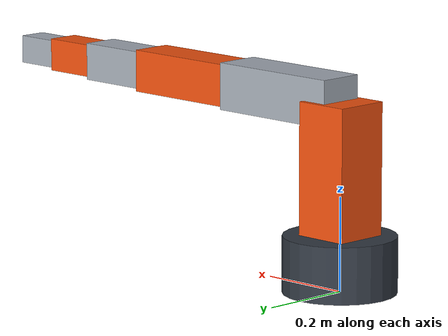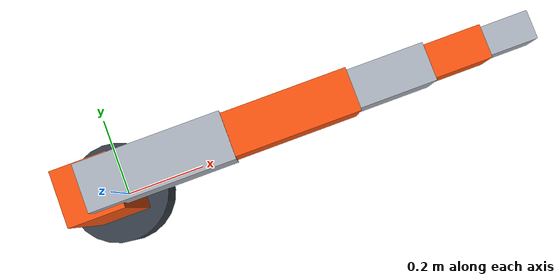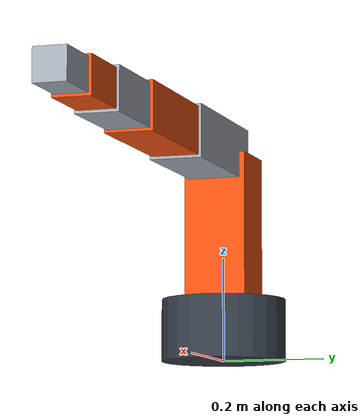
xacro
<?xml version="1.0"?>
<robot name="custom_arm" xmlns:xacro="http://www.ros.org/wiki/xacro">

  <material name="dark_gray">
    <color rgba="0.20 0.23 0.27 1.0"/>
  </material>
  <material name="orange">
    <color rgba="0.95 0.32 0.06 1.0"/>
  </material>
  <material name="light_gray">
    <color rgba="0.65 0.68 0.72 1.0"/>
  </material>

  <!-- A box whose link frame is at one end of the box. -->
  <xacro:macro name="box_link" params="name mass sx sy sz ox oy oz material">
    <link name="${name}">
      <visual>
        <origin xyz="${ox} ${oy} ${oz}" rpy="0 0 0"/>
        <geometry>
          <box size="${sx} ${sy} ${sz}"/>
        </geometry>
        <material name="${material}"/>
      </visual>

      <collision>
        <origin xyz="${ox} ${oy} ${oz}" rpy="0 0 0"/>
        <geometry>
          <box size="${sx} ${sy} ${sz}"/>
        </geometry>
      </collision>

      <inertial>
        <origin xyz="${ox} ${oy} ${oz}" rpy="0 0 0"/>
        <mass value="${mass}"/>
        <inertia
          ixx="${mass * (sy * sy + sz * sz) / 12.0}"
          ixy="0.0"
          ixz="0.0"
          iyy="${mass * (sx * sx + sz * sz) / 12.0}"
          iyz="0.0"
          izz="${mass * (sx * sx + sy * sy) / 12.0}"/>
      </inertial>
    </link>
  </xacro:macro>

  <!-- A cylinder aligned with the link Z axis. -->
  <xacro:macro name="cylinder_link" params="name mass radius length ox oy oz material">
    <link name="${name}">
      <visual>
        <origin xyz="${ox} ${oy} ${oz}" rpy="0 0 0"/>
        <geometry>
          <cylinder radius="${radius}" length="${length}"/>
        </geometry>
        <material name="${material}"/>
      </visual>

      <collision>
        <origin xyz="${ox} ${oy} ${oz}" rpy="0 0 0"/>
        <geometry>
          <cylinder radius="${radius}" length="${length}"/>
        </geometry>
      </collision>

      <inertial>
        <origin xyz="${ox} ${oy} ${oz}" rpy="0 0 0"/>
        <mass value="${mass}"/>
        <inertia
          ixx="${mass * (3.0 * radius * radius + length * length) / 12.0}"
          ixy="0.0"
          ixz="0.0"
          iyy="${mass * (3.0 * radius * radius + length * length) / 12.0}"
          iyz="0.0"
          izz="${mass * radius * radius / 2.0}"/>
      </inertial>
    </link>
  </xacro:macro>

  <!-- Base: 240 mm diameter, 120 mm tall. -->
  <xacro:cylinder_link
    name="base_link"
    mass="6.0"
    radius="0.12"
    length="0.12"
    ox="0.0" oy="0.0" oz="0.06"
    material="dark_gray"/>

  <!-- Shoulder column. The link frame is at its lower end. -->
  <xacro:box_link
    name="link_1"
    mass="4.0"
    sx="0.12" sy="0.12" sz="0.28"
    ox="0.0" oy="0.0" oz="0.14"
    material="orange"/>

  <joint name="joint_1" type="revolute">
    <parent link="base_link"/>
    <child link="link_1"/>
    <origin xyz="0.0 0.0 0.12" rpy="0 0 0"/>
    <axis xyz="0 0 1"/>
    <limit lower="-${pi}" upper="${pi}" effort="120.0" velocity="1.5"/>
    <dynamics damping="0.10" friction="0.05"/>
  </joint>

  <!-- Upper arm, extending along +X. -->
  <xacro:box_link
    name="link_2"
    mass="3.2"
    sx="0.30" sy="0.10" sz="0.10"
    ox="0.15" oy="0.0" oz="0.0"
    material="light_gray"/>

  <joint name="joint_2" type="revolute">
    <parent link="link_1"/>
    <child link="link_2"/>
    <origin xyz="0.0 0.0 0.28" rpy="0 0 0"/>
    <axis xyz="0 1 0"/>
    <limit lower="-2.20" upper="2.20" effort="100.0" velocity="1.5"/>
    <dynamics damping="0.10" friction="0.05"/>
  </joint>

  <!-- Forearm, extending along +X. -->
  <xacro:box_link
    name="link_3"
    mass="2.5"
    sx="0.26" sy="0.09" sz="0.09"
    ox="0.13" oy="0.0" oz="0.0"
    material="orange"/>

  <joint name="joint_3" type="revolute">
    <parent link="link_2"/>
    <child link="link_3"/>
    <origin xyz="0.30 0.0 0.0" rpy="0 0 0"/>
    <axis xyz="0 1 0"/>
    <limit lower="-2.60" upper="2.60" effort="80.0" velocity="1.8"/>
    <dynamics damping="0.08" friction="0.04"/>
  </joint>

  <!-- First wrist link. -->
  <xacro:box_link
    name="link_4"
    mass="1.6"
    sx="0.16" sy="0.08" sz="0.08"
    ox="0.08" oy="0.0" oz="0.0"
    material="light_gray"/>

  <joint name="joint_4" type="revolute">
    <parent link="link_3"/>
    <child link="link_4"/>
    <origin xyz="0.26 0.0 0.0" rpy="0 0 0"/>
    <axis xyz="1 0 0"/>
    <limit lower="-${pi}" upper="${pi}" effort="45.0" velocity="2.0"/>
    <dynamics damping="0.06" friction="0.03"/>
  </joint>

  <!-- Second wrist link. -->
  <xacro:box_link
    name="link_5"
    mass="1.0"
    sx="0.12" sy="0.07" sz="0.07"
    ox="0.06" oy="0.0" oz="0.0"
    material="orange"/>

  <joint name="joint_5" type="revolute">
    <parent link="link_4"/>
    <child link="link_5"/>
    <origin xyz="0.16 0.0 0.0" rpy="0 0 0"/>
    <axis xyz="0 1 0"/>
    <limit lower="-2.20" upper="2.20" effort="35.0" velocity="2.0"/>
    <dynamics damping="0.05" friction="0.02"/>
  </joint>

  <!-- Tool flange. -->
  <xacro:box_link
    name="link_6"
    mass="0.7"
    sx="0.10" sy="0.06" sz="0.06"
    ox="0.05" oy="0.0" oz="0.0"
    material="light_gray"/>

  <joint name="joint_6" type="revolute">
    <parent link="link_5"/>
    <child link="link_6"/>
    <origin xyz="0.12 0.0 0.0" rpy="0 0 0"/>
    <axis xyz="1 0 0"/>
    <limit lower="-${pi}" upper="${pi}" effort="25.0" velocity="2.2"/>
    <dynamics damping="0.04" friction="0.02"/>
  </joint>

  <!-- MoveIt uses tool0 as the tip of the manipulator planning group. -->
  <link name="tool0"/>

  <joint name="link_6_to_tool0" type="fixed">
    <parent link="link_6"/>
    <child link="tool0"/>
    <origin xyz="0.10 0.0 0.0" rpy="0 0 0"/>
  </joint>
</robot>
